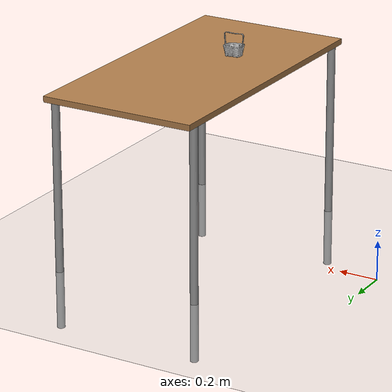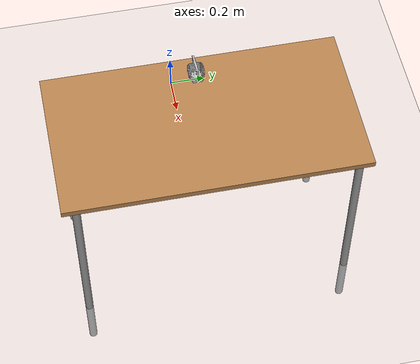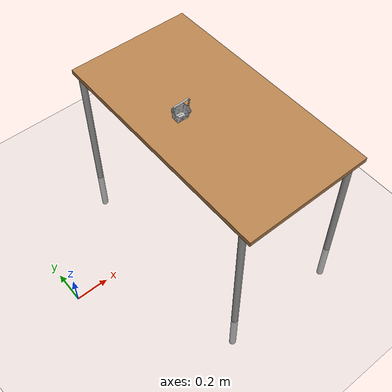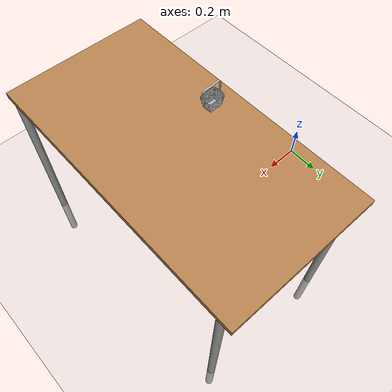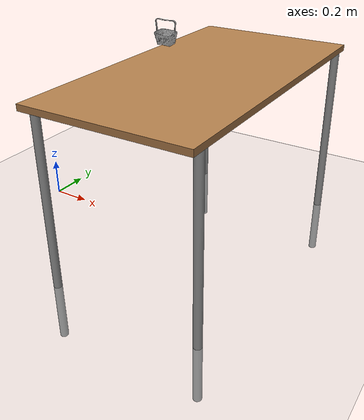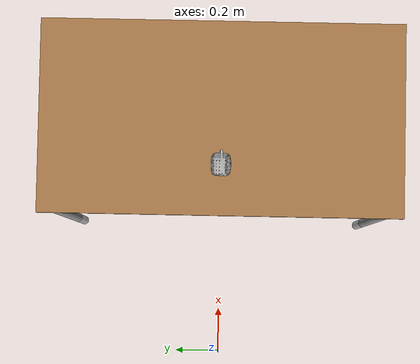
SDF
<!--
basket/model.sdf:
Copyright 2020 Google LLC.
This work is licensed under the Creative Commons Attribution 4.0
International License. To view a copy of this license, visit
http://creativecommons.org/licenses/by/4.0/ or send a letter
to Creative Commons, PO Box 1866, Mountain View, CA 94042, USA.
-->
<?xml version="1.0" ?>
<!-- This is a source file of world. -->
<!-- Do not edit this file. -->
<sdf version="1.4">
  <world name="default">
    <physics type="ode">
      <gravity>0 0 -9.81</gravity>
      <ode>
        <solver>
          <type>quick</type>
          <iters>50</iters>
          <sor>1.4</sor>
        </solver>
        <constraints>
          <cfm>0.0</cfm>
          <erp>0.2</erp>
          <contact_max_correcting_vel>100.0</contact_max_correcting_vel>
          <contact_surface_layer>0.0</contact_surface_layer>
        </constraints>
      </ode>
      <real_time_update_rate>1000</real_time_update_rate>
      <max_step_size>0.001</max_step_size>
    </physics>
    <!-- A global light source -->
    <include>
      <uri>model://sun</uri>
    </include>
    <!-- A ground plane -->
    <include>
      <uri>model://ground_plane</uri>
    </include>
    <!-- Objects -->
    <include>
      <uri>model://basket</uri>
      <pose>0.8 0.0 1.0 0.0 0.0 0.0</pose>
    </include>
    <include>
      <uri>model://vrc_table</uri>
      <pose>1.0 0.0 -0.3 0.0 0.0 1.5708</pose>
    </include>
  </world>
</sdf>

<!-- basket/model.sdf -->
<sdf version="1.6">
  <model name="RJ_Rabbit_Easter_Basket_Blue">
    <link name="link_0">
      <visual name="visual">
        <geometry>
          <mesh>
            <scale>0.5 0.5 0.5</scale>
            <uri>meshes/model.obj</uri>
          </mesh>
        </geometry>
      </visual>
      <collision name="collision_0">
        <geometry>
          <mesh>
            <scale>0.5 0.5 0.5</scale>
            <uri>meshes/model.obj</uri>
          </mesh>
        </geometry>
      </collision>
    </link>
  </model>
</sdf>

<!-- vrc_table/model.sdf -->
<sdf version="1.3">
  <model name="table">
    <static>true</static>
    <link name="link">
      <collision name="surface">
        <pose>0 0 1.2 0 0 0</pose>
        <geometry>
          <box>
            <size>1.5 0.8 0.03</size>
          </box>
        </geometry>
      </collision>
      <visual name="visual1">
        <pose>0 0 1.2 0 0 0</pose>
        <geometry>
          <box>
            <size>1.5 0.8 0.03</size>
          </box>
        </geometry>
        <material>
          <script>
            <uri>file://media/materials/scripts/gazebo.material</uri>
            <name>Gazebo/Wood</name>
          </script>
        </material>
      </visual>
      <collision name="front_left_leg">
        <pose>0.68 0.38 0.6 0 0 0</pose>
        <geometry>
          <cylinder>
            <radius>0.02</radius>
            <length>1.2</length>
          </cylinder>
        </geometry>
      </collision>
      <visual name="front_left_leg">
        <pose>0.68 0.38 0.6 0 0 0</pose>
        <geometry>
          <cylinder>
            <radius>0.02</radius>
            <length>1.2</length>
          </cylinder>
        </geometry>
        <material>
          <script>
            <uri>file://media/materials/scripts/gazebo.material</uri>
            <name>Gazebo/Grey</name>
          </script>
        </material>
      </visual>
      <collision name="front_right_leg">
        <pose>0.68 -0.38 0.6 0 0 0</pose>
        <geometry>
          <cylinder>
            <radius>0.02</radius>
            <length>1.2</length>
          </cylinder>
        </geometry>
      </collision>
      <visual name="front_right_leg">
        <pose>0.68 -0.38 0.6 0 0 0</pose>
        <geometry>
          <cylinder>
            <radius>0.02</radius>
            <length>1.2</length>
          </cylinder>
        </geometry>
        <material>
          <script>
            <uri>file://media/materials/scripts/gazebo.material</uri>
            <name>Gazebo/Grey</name>
          </script>
        </material>
      </visual>
      <collision name="back_right_leg">
        <pose>-0.68 -0.38 0.6 0 0 0</pose>
        <geometry>
          <cylinder>
            <radius>0.02</radius>
            <length>1.2</length>
          </cylinder>
        </geometry>
      </collision>
      <visual name="back_right_leg">
        <pose>-0.68 -0.38 0.6 0 0 0</pose>
        <geometry>
          <cylinder>
            <radius>0.02</radius>
            <length>1.2</length>
          </cylinder>
        </geometry>
        <material>
          <script>
            <uri>file://media/materials/scripts/gazebo.material</uri>
            <name>Gazebo/Grey</name>
          </script>
        </material>
      </visual>
      <collision name="back_left_leg">
        <pose>-0.68 0.38 0.6 0 0 0</pose>
        <geometry>
          <cylinder>
            <radius>0.02</radius>
            <length>1.2</length>
          </cylinder>
        </geometry>
      </collision>
      <visual name="back_left_leg">
        <pose>-0.68 0.38 0.6 0 0 0</pose>
        <geometry>
          <cylinder>
            <radius>0.02</radius>
            <length>1.2</length>
          </cylinder>
        </geometry>
        <material>
          <script>
            <uri>file://media/materials/scripts/gazebo.material</uri>
            <name>Gazebo/Grey</name>
          </script>
        </material>
      </visual>
    </link>
  </model>
</sdf>
